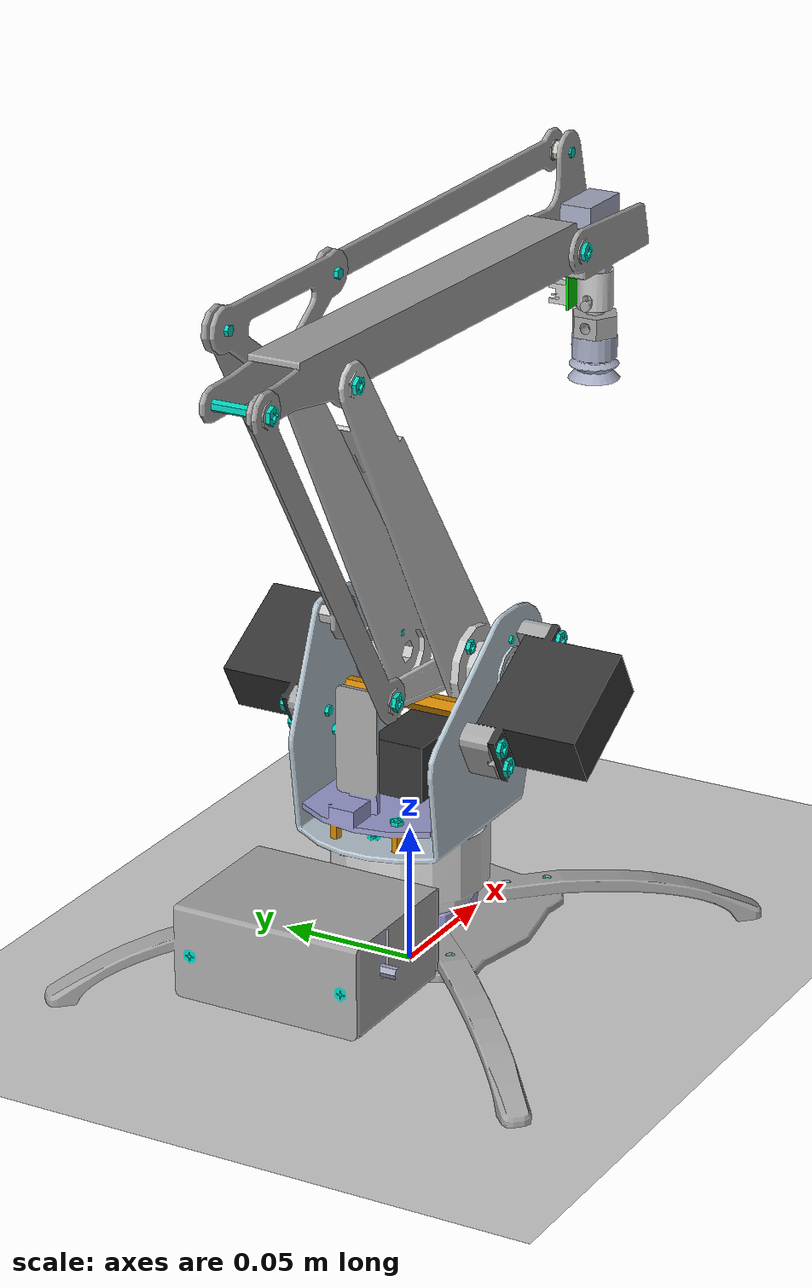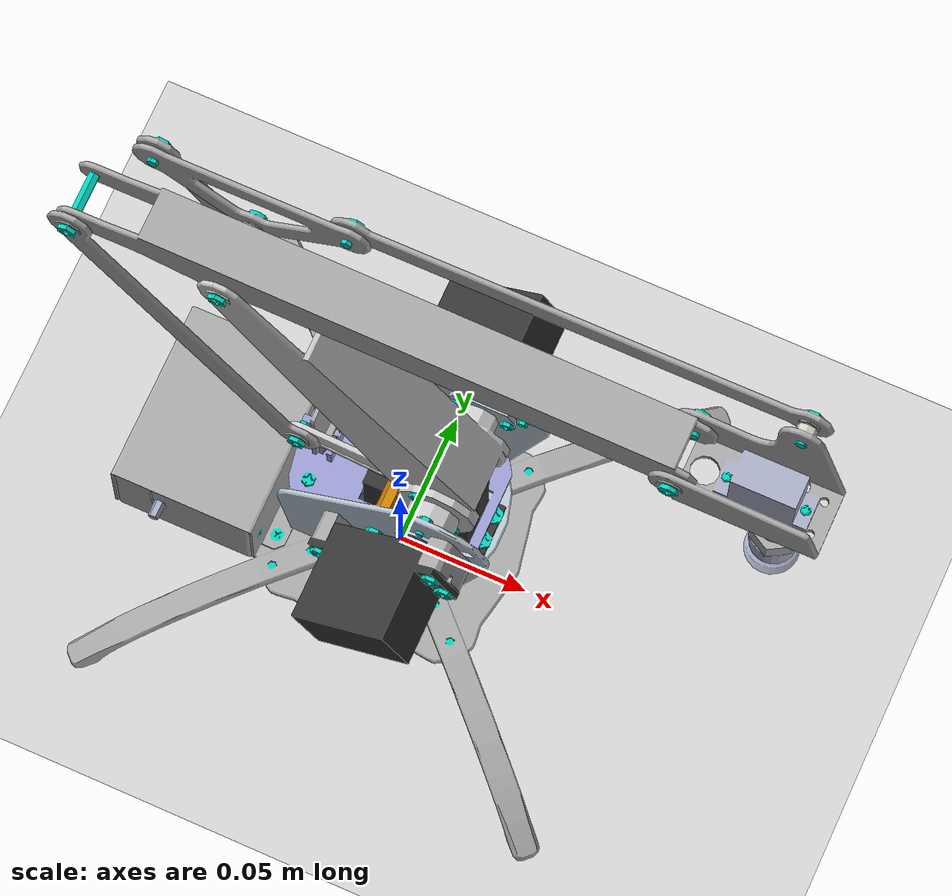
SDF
<?xml version="1.0"?>
<sdf version="1.4">
  <world name="uarm_world">

    <!-- Ground Plane -->
    <include>
      <uri>model://ground_plane</uri>
    </include>

    <include>
      <uri>model://sun</uri>
    </include>

    <include>
      <uri>model://uArm</uri>
    </include>

  </world>
</sdf>

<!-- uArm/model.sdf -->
<sdf version='1.5'>
  <model name='uArm'>
    <pose>0 0 0.0169154 0 0 1.5707963</pose>

    <link name='base_link'>
      <inertial>
        <inertia>
          <ixx>8.431730</ixx>
          <ixy>-0.009720</ixy>
          <ixz>1.901570</ixz>
          <iyy>8.533050</iyy>
          <iyz>-0.007380</iyz>
          <izz>3.787470</izz>
        </inertia>
        <mass>118.00000</mass>
      </inertial>
      <visual name='visual'>
        <geometry>
          <mesh>
            <uri>model://uArm/meshes/base.dae</uri>
          </mesh>
        </geometry>
      </visual>
      <collision name='collision'>
        <pose>0 0 -0.0069154 0 0 0</pose>
        <geometry>
          <box>
            <size>0.19 0.19 0.02</size>
          </box>
        </geometry>
        <surface>
          <friction>
            <ode>
              <mu>500.000000</mu>
              <mu2>500.000000</mu2>
              <slip1>0.000000</slip1>
              <slip2>0.000000</slip2>
            </ode>
          </friction>
          <contact>
            <ode>
              <kp>1000000.000000</kp>
              <kd>1.000000</kd>
              <max_vel>100.000000</max_vel>
              <min_depth>0.000000</min_depth>
            </ode>
          </contact>
        </surface>
      </collision>
    </link>

    <link name='body_link'>
      <pose>0 0 0.0095 0 0 0</pose>
      <visual name='visual'>
        <pose>0 0 -0.0095 0 0 0.045719772</pose>
        <geometry>
          <mesh>
            <uri>model://uArm/meshes/body.dae</uri>
          </mesh>
        </geometry>
      </visual>
      <collision name='collision'>
        <pose>0 0 0.03 0 0 0</pose>
        <geometry>
          <box>
            <size>0.06 0.06 0.06</size>
          </box>
        </geometry>
      </collision>
    </link>
    <joint name="base_to_body" type="revolute">
      <child>body_link</child>
      <parent>base_link</parent>
      <axis>
        <limit>
          <lower>-1.5707963</lower>
          <upper>1.5707963</upper>
        </limit>
        <xyz>0 0 1</xyz>
      </axis>
    </joint>

    <link name='postarm_link'>
      <pose>0 -0.0215302 0.0895098 0 0 0</pose>
      <visual name='visual'>
        <pose>0 0.0215302 -0.0895098 0 0 0.045719772</pose>
        <geometry>
          <mesh>
            <uri>model://uArm/meshes/postarm.dae</uri>
          </mesh>
        </geometry>
      </visual>
      <collision name='collision'>
        <pose>0 0.03 0.07 -0.6 0 0</pose>
        <geometry>
          <box>
            <size>0.02 0.01 0.08</size>
          </box>
        </geometry>
      </collision>
    </link>
    <joint name="body_to_postarm" type="revolute">
      <child>postarm_link</child>
      <parent>body_link</parent>
      <axis>
        <limit>
          <lower>-0.1</lower>
          <upper>2.3</upper>
        </limit>
        <xyz>1 0 0</xyz>
      </axis>
    </joint>

    <link name='postarm_aux2_link'>
      <pose>-0.0083 -0.0215302 0.0895098 0 0 0</pose>
      <visual name='visual'>
        <pose>0.0083 0.0215302 -0.0895098 0 0 0.045719772</pose>
        <geometry>
          <mesh>
            <uri>model://uArm/meshes/postarm_aux2.dae</uri>
          </mesh>
        </geometry>
      </visual>
      <collision name='collision'>
        <pose>0 0.03 0.005 1.5707963 0 0</pose>
        <geometry>
          <box>
            <size>0.002 0.01 0.04</size>
          </box>
        </geometry>
      </collision>
    </link>
    <joint name="body_to_postarm_aux2" type="revolute">
      <child>postarm_aux2_link</child>
      <parent>body_link</parent>
      <axis>
        <limit>
          <lower>-2</lower>
          <upper>0.5</upper>
        </limit>
        <xyz>1 0 0</xyz>
      </axis>
    </joint>

    <link name='postarm_aux1_link'>
      <pose>-0.0083 0.0332492 0.0956167 0 0 0</pose>
      <visual name='visual'>
        <pose>0.0083 -0.0332492 -0.0956167 0 0 0.045719772</pose>
        <geometry>
          <mesh>
            <uri>model://uArm/meshes/postarm_aux1.dae</uri>
          </mesh>
        </geometry>
      </visual>
      <collision name='collision'>
        <pose>-0.003 0.05 0.07 -0.6 0 0</pose>
        <geometry>
          <box>
            <size>0.002 0.01 0.08</size>
          </box>
        </geometry>
      </collision>
    </link>
    <joint name="postarm_aux2_to_postarm_aux1" type="revolute">
      <child>postarm_aux1_link</child>
      <parent>postarm_aux2_link</parent>
      <axis>
        <xyz>1 0 0</xyz>
      </axis>
    </joint>

    <link name='forearm_link'>
      <pose>0 0.0584919 0.214727 0 0 0</pose>
      <visual name='visual'>
        <pose>0 -0.0584919 -0.214727 0 0 0.045719772</pose>
        <geometry>
          <mesh>
            <uri>model://uArm/meshes/forearm.dae</uri>
          </mesh>
        </geometry>
      </visual>
      <collision name='collision'>
        <pose>0 -0.046 0.01 1.5707963 0 0</pose>
        <geometry>
          <box>
            <size>0.02 0.01 0.21</size>
          </box>
        </geometry>
      </collision>
    </link>
    <joint name="postarm_to_forearm" type="revolute">
      <child>forearm_link</child>
      <parent>postarm_link</parent>
      <axis>
        <xyz>1 0 0</xyz>
      </axis>
    </joint>

    <joint name="postarm_aux1_to_forearm" type="revolute">
      <child>forearm_link</child>
      <parent>postarm_aux1_link</parent>
      <pose>0 0.0536531 0.006107 0 0 0</pose>
      <axis>
        <xyz>1 0 0</xyz>
      </axis>
    </joint>

    <link name='postarm_aux3_link'>
      <pose>0.0165 0.014 0.1136 0 0 0</pose>
      <visual name='visual'>
        <pose>-0.0165 -0.014 -0.1136 0 0 0.045719772</pose>
        <geometry>
          <mesh>
            <uri>model://uArm/meshes/postarm_aux3.dae</uri>
          </mesh>
        </geometry>
      </visual>
      <collision name='collision'>
        <pose>0.002 0.045 0.07 -0.6 0 0</pose>
        <geometry>
          <box>
            <size>0.002 0.01 0.08</size>
          </box>
        </geometry>
      </collision>
    </link>
    <joint name="body_to_postarm_aux3" type="revolute">
      <child>postarm_aux3_link</child>
      <parent>body_link</parent>
      <axis>
        <xyz>1 0 0</xyz>
      </axis>
    </joint>

    <link name='triangle_link'>
      <pose>0.016 0.0584919 0.214727 0 0 0</pose>
      <visual name='visual'>
        <pose>-0.016 -0.0584919 -0.214727 0 0 0.045719772</pose>
        <geometry>
          <mesh>
            <uri>model://uArm/meshes/triangle.dae</uri>
          </mesh>
        </geometry>
      </visual>
      <collision name='collision'>
        <pose>-0.001 0 0.02 0 0 0</pose>
        <geometry>
          <box>
            <size>0.002 0.02 0.02</size>
          </box>
        </geometry>
      </collision>
    </link>
    <joint name="postarm_to_triangle" type="revolute">
      <child>triangle_link</child>
      <parent>postarm_link</parent>
      <axis>
        <xyz>1 0 0</xyz>
      </axis>
    </joint>

    <joint name="postarm_aux3_to_triangle" type="revolute">
      <child>triangle_link</child>
      <parent>postarm_aux3_link</parent>
      <pose>0 0.0344044 0.02409 0 0 0</pose>
      <axis>
        <xyz>1 0 0</xyz>
      </axis>
    </joint>

    <link name='forearm_aux_link'>
      <pose>0.0165 0.0240875 0.238817 0 0 0</pose>
      <visual name='visual'>
        <pose>-0.0165 -0.0240875 -0.238817 0 0 0.045719772</pose>
        <geometry>
          <mesh>
            <uri>model://uArm/meshes/forearm_aux.dae</uri>
          </mesh>
        </geometry>
      </visual>
      <collision name='collision'>
        <pose>0.002 -0.08 0 1.5707963 0 0</pose>
        <geometry>
          <box>
            <size>0.002 0.01 0.14</size>
          </box>
        </geometry>
      </collision>
    </link>
    <joint name="triangle_to_forearm_aux" type="revolute">
      <child>forearm_aux_link</child>
      <parent>triangle_link</parent>
      <axis>
        <xyz>1 0 0</xyz>
      </axis>
    </joint>

    <link name='hand_link'>
      <pose>0 -0.101499 0.2164275 0 0 3.1415926</pose>
      <visual name='visual'>
        <pose>0 0.041 -0.0109035 0 0 0</pose>
        <geometry>
          <mesh>
            <uri>model://uArm/meshes/hand.dae</uri>
          </mesh>
        </geometry>
      </visual>
      <collision name='collision'>
        <pose>0 0.03 0 0 0 0</pose>
        <geometry>
          <box>
            <size>0.026 0.035 0.03</size>
          </box>
        </geometry>
      </collision>
    </link>
    <joint name="forearm_to_hand" type="revolute">
      <child>hand_link</child>
      <parent>forearm_link</parent>
      <axis>
        <xyz>1 0 0</xyz>
      </axis>
    </joint>

    <joint name="forearm_aux_to hand" type="revolute">
      <child>hand_link</child>
      <parent>forearm_aux_link</parent>
      <pose>-0.0165 0.0344 0.02409647 0 0 0</pose>
      <axis>
        <xyz>1 0 0</xyz>
      </axis>
    </joint>

    <link name='handrot_link'>
      <pose>0 -0.136040 0.184433 0 0 0</pose>
      <visual name='visual'>
        <pose>0 0 -0.018 0 0 0</pose>
        <geometry>
          <mesh>
            <uri>model://uArm/meshes/handrot.dae</uri>
          </mesh>
        </geometry>
      </visual>
      <collision name='collision'>
        <pose>0 0 0.008 0 0 0</pose>
        <geometry>
          <box>
            <size>0.013 0.013 0.013</size>
          </box>
        </geometry>
      </collision>
    </link>
    <joint name="hand_to_handrot" type="revolute">
      <child>handrot_link</child>
      <parent>hand_link</parent>
      <axis>
        <limit>
          <lower>-0.8</lower>
          <upper>0.8</upper>
        </limit>
        <xyz>0 0 1</xyz>
      </axis>
    </joint>

    <link name='contact_link'>
      <pose>0 -0.136040 0.166433 0 0 0</pose>
      <visual name='visual'>
        <geometry>
          <mesh>
            <uri>model://uArm/meshes/contact.dae</uri>
          </mesh>
        </geometry>
      </visual>
      <collision name='collision'>
        <pose>0 0 0.012 0 0 0</pose>
        <geometry>
          <box>
            <size>0.015 0.015 0.01</size>
          </box>
        </geometry>
      </collision>
    </link>
    <joint name="handrot_to_contact" type="prismatic">
      <child>contact_link</child>
      <parent>handrot_link</parent>
      <axis>
        <limit>
          <lower>0</lower>
          <upper>0.002</upper>
        </limit>
        <xyz>0 0 1</xyz>
      </axis>
    </joint>

    <link name='sucker_link'>
      <pose>0 -0.136040 0.174433 0 0 0</pose>
      <visual name='visual'>
        <pose>0 0 0 1.5707963 0 0</pose>
        <geometry>
          <mesh>
            <uri>model://uArm/meshes/sucker.dae</uri>
          </mesh>
        </geometry>
      </visual>
      <collision name='collision'>
        <pose>0 0 -0.012 0 0 0</pose>
        <geometry>
          <box>
            <size>0.015 0.015 0.01</size>
          </box>
        </geometry>
      </collision>
    </link>
    <joint name="contact_to_sucker" type="fixed">
      <child>sucker_link</child>
      <parent>contact_link</parent>
    </joint>

    <self_collide>0</self_collide>
    <static>0</static>
    <plugin name="uarm_plugin" filename="libUarmPlugin.so" />
  </model>
</sdf>
